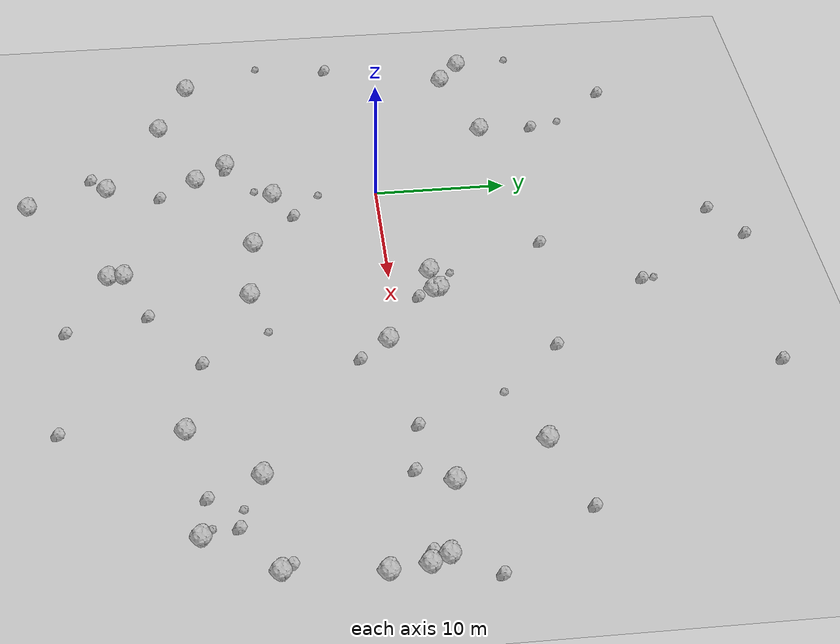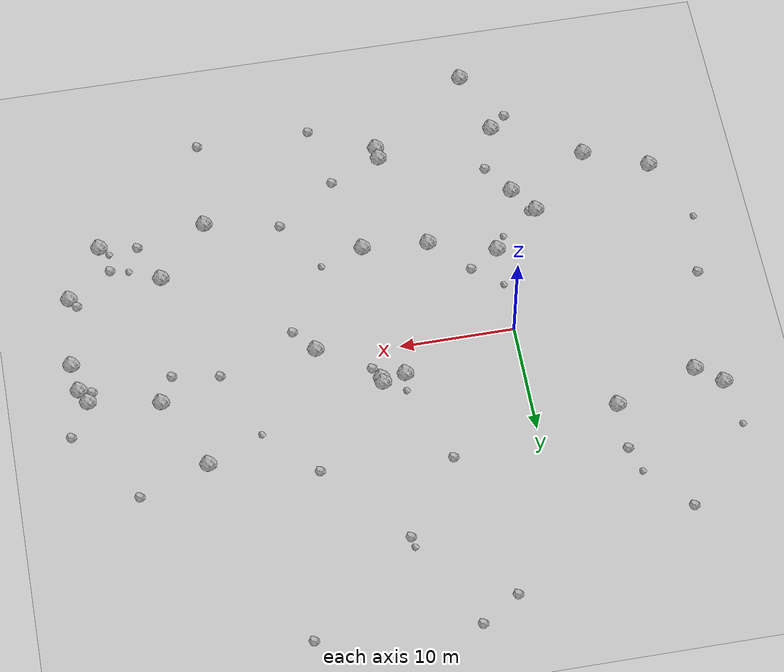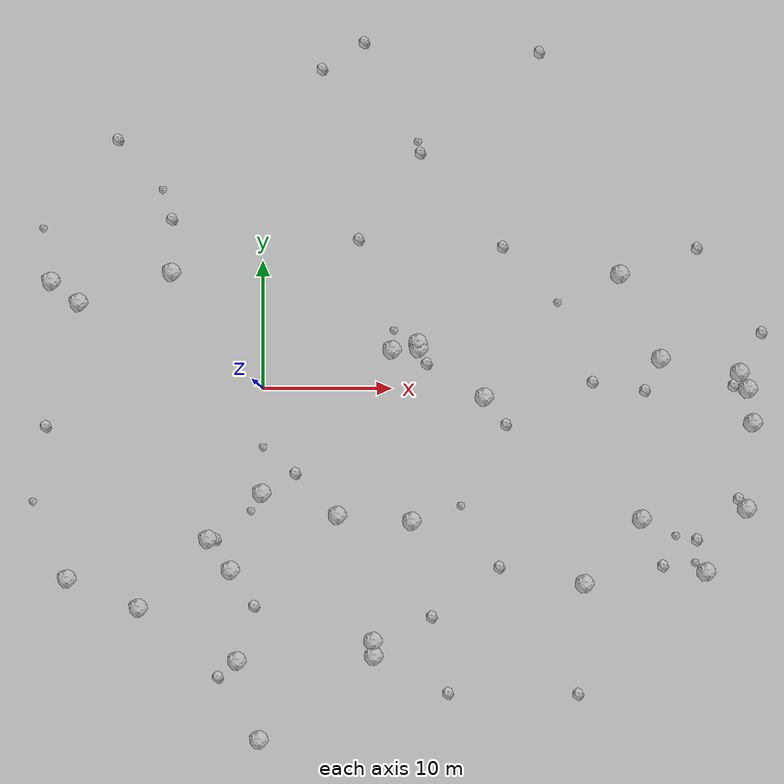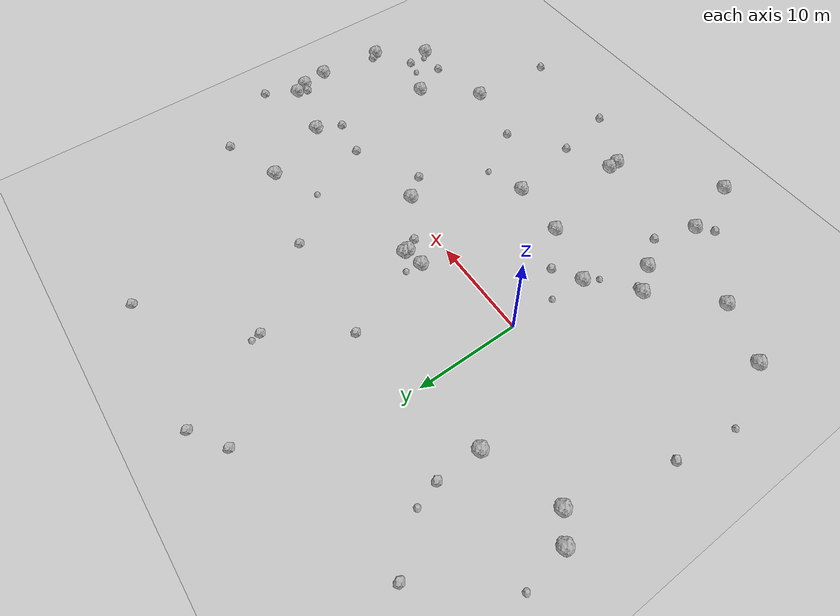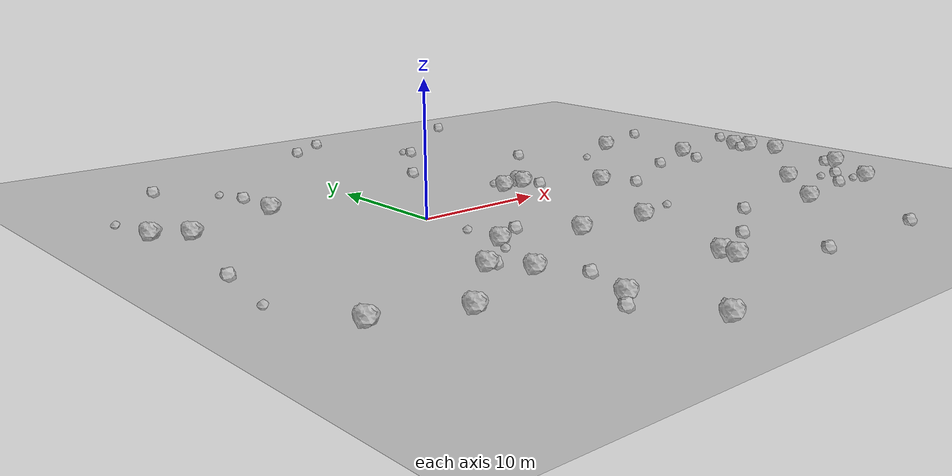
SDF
<sdf version="1.6">
 <world name="default">
  <include><uri>model://custom_ground</uri></include>
  <include><uri>model://sun</uri></include>
  <model name="rock1_0_0">
   <include><uri>model://rock1</uri><pose>5.771079493146271 -9.819357065651012 0.5 0 0 0</pose></include>
  </model>
  <model name="rock1_0_1">
   <include><uri>model://rock1</uri><pose>-2.4612866904050428 -13.996237861679322 0.5 0 0 0</pose></include>
  </model>
  <model name="rock1_0_2">
   <include><uri>model://rock1</uri><pose>36.985138393442405 1.0681095417302835 0.5 0 0 0</pose></include>
  </model>
  <model name="rock1_0_3">
   <include><uri>model://rock1</uri><pose>10.048795077405583 2.964165694412273 0.5 0 0 0</pose></include>
  </model>
  <model name="rock1_0_4">
   <include><uri>model://rock1</uri><pose>8.486551937444588 -19.46444843012776 0.5 0 0 0</pose></include>
  </model>
  <model name="rock1_0_5">
   <include><uri>model://rock1</uri><pose>37.61261482613806 -0.20267908136619894 0.5 0 0 0</pose></include>
  </model>
  <model name="rock1_0_6">
   <include><uri>model://rock1</uri><pose>12.118830410630451 3.055511634601544 0.5 0 0 0</pose></include>
  </model>
  <model name="rock1_0_7">
   <include><uri>model://rock1</uri><pose>-0.25942421664873905 -26.884336957633725 0.5 0 0 0</pose></include>
  </model>
  <model name="rock1_0_8">
   <include><uri>model://rock1</uri><pose>-16.4514751585276 8.43695050223856 0.5 0 0 0</pose></include>
  </model>
  <model name="rock1_0_9">
   <include><uri>model://rock1</uri><pose>-0.053720074185065414 -8.090334665398736 0.5 0 0 0</pose></include>
  </model>
  <model name="rock1_0_10">
   <include><uri>model://rock1</uri><pose>-7.0837236879827365 9.100488952114972 0.5 0 0 0</pose></include>
  </model>
  <model name="rock1_0_11">
   <include><uri>model://rock1</uri><pose>17.169204407424907 -0.7466109547467568 0.5 0 0 0</pose></include>
  </model>
  <model name="rock1_0_12">
   <include><uri>model://rock1</uri><pose>29.23358540086545 -10.208720388582055 0.5 0 0 0</pose></include>
  </model>
  <model name="rock1_0_13">
   <include><uri>model://rock1</uri><pose>12.058977014299415 3.48241184290449 0.5 0 0 0</pose></include>
  </model>
  <model name="rock1_0_14">
   <include><uri>model://rock1</uri><pose>-14.298259528149014 6.763482802699436 0.5 0 0 0</pose></include>
  </model>
  <model name="rock1_0_15">
   <include><uri>model://rock1</uri><pose>24.753520587321518 -15.1475804853564 0.5 0 0 0</pose></include>
  </model>
  <model name="rock1_0_16">
   <include><uri>model://rock1</uri><pose>-15.022272744730262 -14.593059945984567 0.5 0 0 0</pose></include>
  </model>
  <model name="rock1_0_17">
   <include><uri>model://rock1</uri><pose>37.94356740712384 -2.8302228001194614 0.5 0 0 0</pose></include>
  </model>
  <model name="rock1_0_18">
   <include><uri>model://rock1</uri><pose>8.53937465269518 -20.58841144606827 0.5 0 0 0</pose></include>
  </model>
  <model name="rock1_0_19">
   <include><uri>model://rock1</uri><pose>-1.9562288233087628 -20.901819445603895 0.5 0 0 0</pose></include>
  </model>
  <model name="rock1_0_20">
   <include><uri>model://rock1</uri><pose>37.336657658712475 -9.456053552553655 0.5 0 0 0</pose></include>
  </model>
  <model name="rock1_0_21">
   <include><uri>model://rock1</uri><pose>27.815892051625454 8.796359596386488 0.5 0 0 0</pose></include>
  </model>
  <model name="rock1_0_22">
   <include><uri>model://rock1</uri><pose>34.12363646416154 -14.290007717067683 0.5 0 0 0</pose></include>
  </model>
  <model name="rock1_0_23">
   <include><uri>model://rock1</uri><pose>-4.201134541332083 -11.614262421315978 0.5 0 0 0</pose></include>
  </model>
  <model name="rock1_0_24">
   <include><uri>model://rock1</uri><pose>-9.520718336758359 -16.848834644733778 0.5 0 0 0</pose></include>
  </model>
  <model name="rock1_0_25">
   <include><uri>model://rock1</uri><pose>11.505831305176017 -10.292900423176206 0.5 0 0 0</pose></include>
  </model>
  <model name="rock1_0_26">
   <include><uri>model://rock1</uri><pose>30.890108389444933 2.1822770263824367 0.5 0 0 0</pose></include>
  </model>
  <model name="rock2_0_0">
   <include><uri>model://rock2</uri><pose>36.75452826203608 -8.71694973676739 0.3 0 0 0</pose></include>
  </model>
  <model name="rock2_0_1">
   <include><uri>model://rock2</uri><pose>18.845919006015144 -2.874635789537013 0.3 0 0 0</pose></include>
  </model>
  <model name="rock2_0_2">
   <include><uri>model://rock2</uri><pose>36.50875118751303 0.07579263480426235 0.3 0 0 0</pose></include>
  </model>
  <model name="rock2_0_3">
   <include><uri>model://rock2</uri><pose>29.648643874318047 -0.28101768252950166 0.3 0 0 0</pose></include>
  </model>
  <model name="rock2_0_4">
   <include><uri>model://rock2</uri><pose>-7.100849774027374 13.310976714243047 0.3 0 0 0</pose></include>
  </model>
  <model name="rock2_0_5">
   <include><uri>model://rock2</uri><pose>12.334452939071454 18.44817790222745 0.3 0 0 0</pose></include>
  </model>
  <model name="rock2_0_6">
   <include><uri>model://rock2</uri><pose>7.489600410727853 11.638725358525761 0.3 0 0 0</pose></include>
  </model>
  <model name="rock2_0_7">
   <include><uri>model://rock2</uri><pose>-0.6482757795080047 -16.753241077005903 0.3 0 0 0</pose></include>
  </model>
  <model name="rock2_0_8">
   <include><uri>model://rock2</uri><pose>21.727939803020178 26.43283768588867 0.3 0 0 0</pose></include>
  </model>
  <model name="rock2_0_9">
   <include><uri>model://rock2</uri><pose>18.712546289747927 11.009290664880204 0.3 0 0 0</pose></include>
  </model>
  <model name="rock2_0_10">
   <include><uri>model://rock2</uri><pose>4.661772898698139 25.15558167487726 0.3 0 0 0</pose></include>
  </model>
  <model name="rock2_0_11">
   <include><uri>model://rock2</uri><pose>18.2300358410223 -13.865211978134258 0.3 0 0 0</pose></include>
  </model>
  <model name="rock2_0_12">
   <include><uri>model://rock2</uri><pose>12.997203176114077 -17.63209554636836 0.3 0 0 0</pose></include>
  </model>
  <model name="rock2_0_13">
   <include><uri>model://rock2</uri><pose>14.207515955632125 -23.45207866706702 0.3 0 0 0</pose></include>
  </model>
  <model name="rock2_0_14">
   <include><uri>model://rock2</uri><pose>-11.338271015300743 19.615290800388976 0.3 0 0 0</pose></include>
  </model>
  <model name="rock2_0_15">
   <include><uri>model://rock2</uri><pose>25.591239246778365 0.39410615585265063 0.3 0 0 0</pose></include>
  </model>
  <model name="rock2_0_16">
   <include><uri>model://rock2</uri><pose>33.48041887402398 -11.830657898177112 0.3 0 0 0</pose></include>
  </model>
  <model name="rock2_0_17">
   <include><uri>model://rock2</uri><pose>2.529741784028687 -6.575130743815489 0.3 0 0 0</pose></include>
  </model>
  <model name="rock2_0_18">
   <include><uri>model://rock2</uri><pose>33.8564674563835 10.830129794093708 0.3 0 0 0</pose></include>
  </model>
  <model name="rock2_0_19">
   <include><uri>model://rock2</uri><pose>-16.79588912672681 -2.840633547955939 0.3 0 0 0</pose></include>
  </model>
  <model name="rock2_0_20">
   <include><uri>model://rock2</uri><pose>38.77200022647508 4.182883179168613 0.3 0 0 0</pose></include>
  </model>
  <model name="rock2_0_21">
   <include><uri>model://rock2</uri><pose>7.9766263881879205 27.276403354317026 0.3 0 0 0</pose></include>
  </model>
  <model name="rock2_0_22">
   <include><uri>model://rock2</uri><pose>30.82738978519425 -13.822941380704957 0.3 0 0 0</pose></include>
  </model>
  <model name="rock2_0_23">
   <include><uri>model://rock2</uri><pose>24.18083495290469 -23.573466693524985 0.3 0 0 0</pose></include>
  </model>
  <model name="rock2_0_24">
   <include><uri>model://rock2</uri><pose>12.73416419678329 1.8926628384261193 0.3 0 0 0</pose></include>
  </model>
  <model name="rock2_0_25">
   <include><uri>model://rock2</uri><pose>-3.6276049795563026 -11.627921909339982 0.3 0 0 0</pose></include>
  </model>
  <model name="rock2_0_26">
   <include><uri>model://rock2</uri><pose>-3.421217579666763 -22.145819294265046 0.3 0 0 0</pose></include>
  </model>
  <model name="rock3_0_0">
   <include><uri>model://rock3</uri><pose>31.84902953128693 -11.537268569450728 0.2 0 0 0</pose></include>
  </model>
  <model name="rock3_0_1">
   <include><uri>model://rock3</uri><pose>-0.924309781867727 -9.482891123642286 0.2 0 0 0</pose></include>
  </model>
  <model name="rock3_0_2">
   <include><uri>model://rock3</uri><pose>15.28409374666085 -9.150784119863964 0.2 0 0 0</pose></include>
  </model>
  <model name="rock3_0_3">
   <include><uri>model://rock3</uri><pose>-17.169247294401437 12.624495429024911 0.2 0 0 0</pose></include>
  </model>
  <model name="rock3_0_4">
   <include><uri>model://rock3</uri><pose>10.173097122596946 4.48150940751561 0.2 0 0 0</pose></include>
  </model>
  <model name="rock3_0_5">
   <include><uri>model://rock3</uri><pose>12.128260634983086 19.347315704432525 0.2 0 0 0</pose></include>
  </model>
  <model name="rock3_0_6">
   <include><uri>model://rock3</uri><pose>22.92888021927402 6.604111257474479 0.2 0 0 0</pose></include>
  </model>
  <model name="rock3_0_7">
   <include><uri>model://rock3</uri><pose>-7.857613110841161 15.63376888656449 0.2 0 0 0</pose></include>
  </model>
  <model name="rock3_0_8">
   <include><uri>model://rock3</uri><pose>-17.78611720925753 -8.677737041944894 0.2 0 0 0</pose></include>
  </model>
  <model name="rock3_0_9">
   <include><uri>model://rock3</uri><pose>-0.0008432473640205274 -4.558166511008107 0.2 0 0 0</pose></include>
  </model>
  <model name="rock3_0_10">
   <include><uri>model://rock3</uri><pose>33.31756683790349 -13.616653802878261 0.2 0 0 0</pose></include>
  </model>
 </world>
</sdf>
